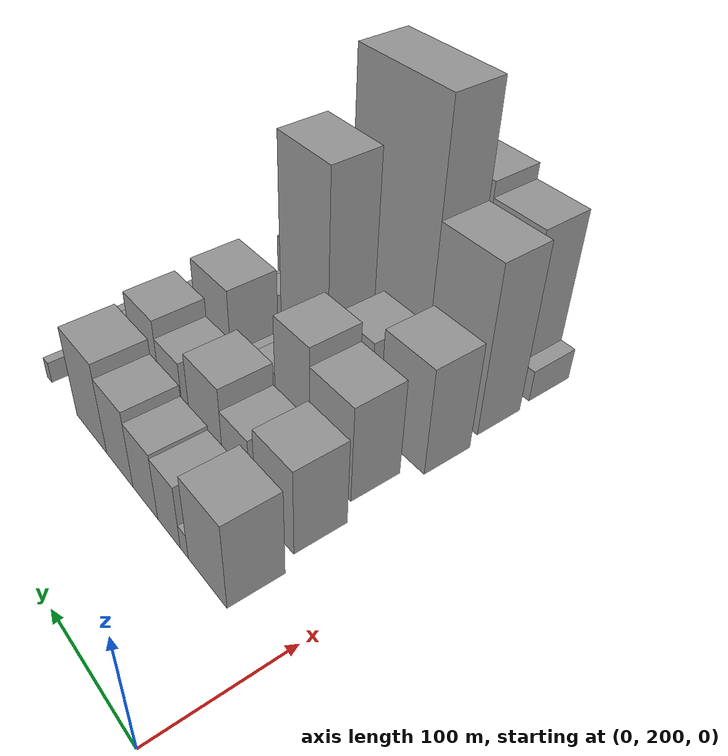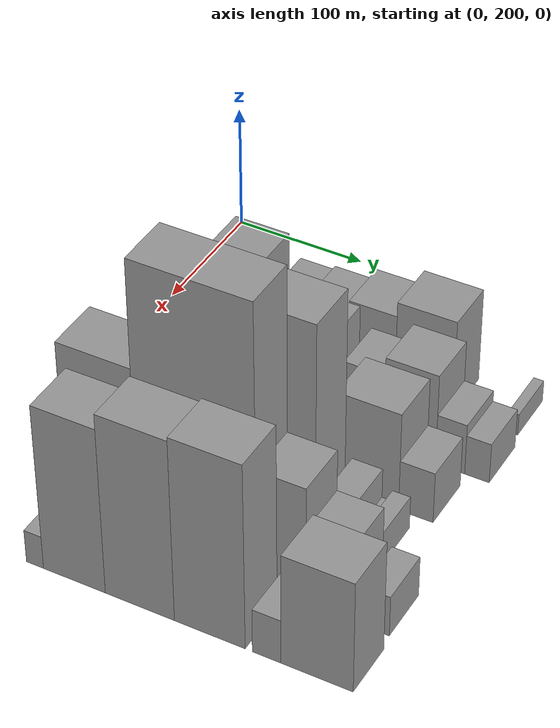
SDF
<sdf version="1.6">
 <world name="default">
  <model name="building_35">
   <static>1</static>
   <pose>100.0000 263.3432 0 0.000000 0.000000 0.000000</pose>
   <link name="link">
    <pose>0 0 36.00 0 0 0</pose>
    <collision name="collision"><geometry><box><size>40.0000 42.3230 72.0000</size></box></geometry></collision>
    <visual name="visual">
     <cast_shadows>0</cast_shadows>
     <geometry><box><size>40.0000 42.3230 72.0000</size></box></geometry>
     <material>
      <script>
       <uri>model://grey_wall/materials/scripts</uri>
       <uri>model://grey_wall/materials/textures</uri>
       <name>vrc/grey_wall</name>
      </script>
     </material>
    </visual>
   </link>
  </model>
  <model name="building_36">
   <static>1</static>
   <pose>100.0000 289.1036 0 0.000000 0.000000 0.000000</pose>
   <link name="link">
    <pose>0 0 10.50 0 0 0</pose>
    <collision name="collision"><geometry><box><size>40.0000 9.1977 21.0000</size></box></geometry></collision>
    <visual name="visual">
     <cast_shadows>0</cast_shadows>
     <geometry><box><size>40.0000 9.1977 21.0000</size></box></geometry>
     <material>
      <script>
       <uri>model://grey_wall/materials/scripts</uri>
       <uri>model://grey_wall/materials/textures</uri>
       <name>vrc/grey_wall</name>
      </script>
     </material>
    </visual>
   </link>
  </model>
  <model name="building_37">
   <static>1</static>
   <pose>100.0000 307.2518 0 0.000000 0.000000 0.000000</pose>
   <link name="link">
    <pose>0 0 27.00 0 0 0</pose>
    <collision name="collision"><geometry><box><size>40.0000 27.0988 54.0000</size></box></geometry></collision>
    <visual name="visual">
     <cast_shadows>0</cast_shadows>
     <geometry><box><size>40.0000 27.0988 54.0000</size></box></geometry>
     <material>
      <script>
       <uri>model://grey_wall/materials/scripts</uri>
       <uri>model://grey_wall/materials/textures</uri>
       <name>vrc/grey_wall</name>
      </script>
     </material>
    </visual>
   </link>
  </model>
  <model name="building_38">
   <static>1</static>
   <pose>100.0000 336.7507 0 0.000000 0.000000 0.000000</pose>
   <link name="link">
    <pose>0 0 28.50 0 0 0</pose>
    <collision name="collision"><geometry><box><size>40.0000 31.8990 57.0000</size></box></geometry></collision>
    <visual name="visual">
     <cast_shadows>0</cast_shadows>
     <geometry><box><size>40.0000 31.8990 57.0000</size></box></geometry>
     <material>
      <script>
       <uri>model://grey_wall/materials/scripts</uri>
       <uri>model://grey_wall/materials/textures</uri>
       <name>vrc/grey_wall</name>
      </script>
     </material>
    </visual>
   </link>
  </model>
  <model name="building_39">
   <static>1</static>
   <pose>100.0000 370.7542 0 0.000000 0.000000 0.000000</pose>
   <link name="link">
    <pose>0 0 33.00 0 0 0</pose>
    <collision name="collision"><geometry><box><size>40.0000 36.1079 66.0000</size></box></geometry></collision>
    <visual name="visual">
     <cast_shadows>0</cast_shadows>
     <geometry><box><size>40.0000 36.1079 66.0000</size></box></geometry>
     <material>
      <script>
       <uri>model://grey_wall/materials/scripts</uri>
       <uri>model://grey_wall/materials/textures</uri>
       <name>vrc/grey_wall</name>
      </script>
     </material>
    </visual>
   </link>
  </model>
  <model name="building_40">
   <static>1</static>
   <pose>100.0000 410.9158 0 0.000000 0.000000 0.000000</pose>
   <link name="link">
    <pose>0 0 39.00 0 0 0</pose>
    <collision name="collision"><geometry><box><size>40.0000 44.2153 78.0000</size></box></geometry></collision>
    <visual name="visual">
     <cast_shadows>0</cast_shadows>
     <geometry><box><size>40.0000 44.2153 78.0000</size></box></geometry>
     <material>
      <script>
       <uri>model://grey_wall/materials/scripts</uri>
       <uri>model://grey_wall/materials/textures</uri>
       <name>vrc/grey_wall</name>
      </script>
     </material>
    </visual>
   </link>
  </model>
  <model name="building_41">
   <static>1</static>
   <pose>100.0000 477.3206 0 0.000000 0.000000 0.000000</pose>
   <link name="link">
    <pose>0 0 9.00 0 0 0</pose>
    <collision name="collision"><geometry><box><size>40.0000 7.5315 18.0000</size></box></geometry></collision>
    <visual name="visual">
     <cast_shadows>0</cast_shadows>
     <geometry><box><size>40.0000 7.5315 18.0000</size></box></geometry>
     <material>
      <script>
       <uri>model://grey_wall/materials/scripts</uri>
       <uri>model://grey_wall/materials/textures</uri>
       <name>vrc/grey_wall</name>
      </script>
     </material>
    </visual>
   </link>
  </model>
  <model name="building_82">
   <static>1</static>
   <pose>152.0000 270.3311 0 0.000000 0.000000 0.000000</pose>
   <link name="link">
    <pose>0 0 36.00 0 0 0</pose>
    <collision name="collision"><geometry><box><size>40.0000 40.0743 72.0000</size></box></geometry></collision>
    <visual name="visual">
     <cast_shadows>0</cast_shadows>
     <geometry><box><size>40.0000 40.0743 72.0000</size></box></geometry>
     <material>
      <script>
       <uri>model://grey_wall/materials/scripts</uri>
       <uri>model://grey_wall/materials/textures</uri>
       <name>vrc/grey_wall</name>
      </script>
     </material>
    </visual>
   </link>
  </model>
  <model name="building_83">
   <static>1</static>
   <pose>152.0000 311.8385 0 0.000000 0.000000 0.000000</pose>
   <link name="link">
    <pose>0 0 28.50 0 0 0</pose>
    <collision name="collision"><geometry><box><size>40.0000 30.9406 57.0000</size></box></geometry></collision>
    <visual name="visual">
     <cast_shadows>0</cast_shadows>
     <geometry><box><size>40.0000 30.9406 57.0000</size></box></geometry>
     <material>
      <script>
       <uri>model://grey_wall/materials/scripts</uri>
       <uri>model://grey_wall/materials/textures</uri>
       <name>vrc/grey_wall</name>
      </script>
     </material>
    </visual>
   </link>
  </model>
  <model name="building_84">
   <static>1</static>
   <pose>152.0000 347.2280 0 0.000000 0.000000 0.000000</pose>
   <link name="link">
    <pose>0 0 37.50 0 0 0</pose>
    <collision name="collision"><geometry><box><size>40.0000 39.8383 75.0000</size></box></geometry></collision>
    <visual name="visual">
     <cast_shadows>0</cast_shadows>
     <geometry><box><size>40.0000 39.8383 75.0000</size></box></geometry>
     <material>
      <script>
       <uri>model://grey_wall/materials/scripts</uri>
       <uri>model://grey_wall/materials/textures</uri>
       <name>vrc/grey_wall</name>
      </script>
     </material>
    </visual>
   </link>
  </model>
  <model name="building_85">
   <static>1</static>
   <pose>152.0000 391.4638 0 0.000000 0.000000 0.000000</pose>
   <link name="link">
    <pose>0 0 30.00 0 0 0</pose>
    <collision name="collision"><geometry><box><size>40.0000 30.6335 60.0000</size></box></geometry></collision>
    <visual name="visual">
     <cast_shadows>0</cast_shadows>
     <geometry><box><size>40.0000 30.6335 60.0000</size></box></geometry>
     <material>
      <script>
       <uri>model://grey_wall/materials/scripts</uri>
       <uri>model://grey_wall/materials/textures</uri>
       <name>vrc/grey_wall</name>
      </script>
     </material>
    </visual>
   </link>
  </model>
  <model name="building_86">
   <static>1</static>
   <pose>152.0000 426.1451 0 0.000000 0.000000 0.000000</pose>
   <link name="link">
    <pose>0 0 37.50 0 0 0</pose>
    <collision name="collision"><geometry><box><size>40.0000 38.7290 75.0000</size></box></geometry></collision>
    <visual name="visual">
     <cast_shadows>0</cast_shadows>
     <geometry><box><size>40.0000 38.7290 75.0000</size></box></geometry>
     <material>
      <script>
       <uri>model://grey_wall/materials/scripts</uri>
       <uri>model://grey_wall/materials/textures</uri>
       <name>vrc/grey_wall</name>
      </script>
     </material>
    </visual>
   </link>
  </model>
  <model name="building_87">
   <static>1</static>
   <pose>152.0000 456.1907 0 0.000000 0.000000 0.000000</pose>
   <link name="link">
    <pose>0 0 21.00 0 0 0</pose>
    <collision name="collision"><geometry><box><size>40.0000 21.3623 42.0000</size></box></geometry></collision>
    <visual name="visual">
     <cast_shadows>0</cast_shadows>
     <geometry><box><size>40.0000 21.3623 42.0000</size></box></geometry>
     <material>
      <script>
       <uri>model://grey_wall/materials/scripts</uri>
       <uri>model://grey_wall/materials/textures</uri>
       <name>vrc/grey_wall</name>
      </script>
     </material>
    </visual>
   </link>
  </model>
  <model name="building_88">
   <static>1</static>
   <pose>152.0000 475.7826 0 0.000000 0.000000 0.000000</pose>
   <link name="link">
    <pose>0 0 16.50 0 0 0</pose>
    <collision name="collision"><geometry><box><size>40.0000 17.8215 33.0000</size></box></geometry></collision>
    <visual name="visual">
     <cast_shadows>0</cast_shadows>
     <geometry><box><size>40.0000 17.8215 33.0000</size></box></geometry>
     <material>
      <script>
       <uri>model://grey_wall/materials/scripts</uri>
       <uri>model://grey_wall/materials/textures</uri>
       <name>vrc/grey_wall</name>
      </script>
     </material>
    </visual>
   </link>
  </model>
  <model name="building_131">
   <static>1</static>
   <pose>204.0000 283.9819 0 0.000000 0.000000 0.000000</pose>
   <link name="link">
    <pose>0 0 40.50 0 0 0</pose>
    <collision name="collision"><geometry><box><size>40.0000 43.9001 81.0000</size></box></geometry></collision>
    <visual name="visual">
     <cast_shadows>0</cast_shadows>
     <geometry><box><size>40.0000 43.9001 81.0000</size></box></geometry>
     <material>
      <script>
       <uri>model://grey_wall/materials/scripts</uri>
       <uri>model://grey_wall/materials/textures</uri>
       <name>vrc/grey_wall</name>
      </script>
     </material>
    </visual>
   </link>
  </model>
  <model name="building_132">
   <static>1</static>
   <pose>204.0000 324.8077 0 0.000000 0.000000 0.000000</pose>
   <link name="link">
    <pose>0 0 48.00 0 0 0</pose>
    <collision name="collision"><geometry><box><size>40.0000 37.7515 96.0000</size></box></geometry></collision>
    <visual name="visual">
     <cast_shadows>0</cast_shadows>
     <geometry><box><size>40.0000 37.7515 96.0000</size></box></geometry>
     <material>
      <script>
       <uri>model://grey_wall/materials/scripts</uri>
       <uri>model://grey_wall/materials/textures</uri>
       <name>vrc/grey_wall</name>
      </script>
     </material>
    </visual>
   </link>
  </model>
  <model name="building_133">
   <static>1</static>
   <pose>204.0000 356.7998 0 0.000000 0.000000 0.000000</pose>
   <link name="link">
    <pose>0 0 24.00 0 0 0</pose>
    <collision name="collision"><geometry><box><size>40.0000 26.2327 48.0000</size></box></geometry></collision>
    <visual name="visual">
     <cast_shadows>0</cast_shadows>
     <geometry><box><size>40.0000 26.2327 48.0000</size></box></geometry>
     <material>
      <script>
       <uri>model://grey_wall/materials/scripts</uri>
       <uri>model://grey_wall/materials/textures</uri>
       <name>vrc/grey_wall</name>
      </script>
     </material>
    </visual>
   </link>
  </model>
  <model name="building_134">
   <static>1</static>
   <pose>204.0000 379.4706 0 0.000000 0.000000 0.000000</pose>
   <link name="link">
    <pose>0 0 18.00 0 0 0</pose>
    <collision name="collision"><geometry><box><size>40.0000 19.1090 36.0000</size></box></geometry></collision>
    <visual name="visual">
     <cast_shadows>0</cast_shadows>
     <geometry><box><size>40.0000 19.1090 36.0000</size></box></geometry>
     <material>
      <script>
       <uri>model://grey_wall/materials/scripts</uri>
       <uri>model://grey_wall/materials/textures</uri>
       <name>vrc/grey_wall</name>
      </script>
     </material>
    </visual>
   </link>
  </model>
  <model name="building_135">
   <static>1</static>
   <pose>204.0000 421.2798 0 0.000000 0.000000 0.000000</pose>
   <link name="link">
    <pose>0 0 40.50 0 0 0</pose>
    <collision name="collision"><geometry><box><size>40.0000 46.5094 81.0000</size></box></geometry></collision>
    <visual name="visual">
     <cast_shadows>0</cast_shadows>
     <geometry><box><size>40.0000 46.5094 81.0000</size></box></geometry>
     <material>
      <script>
       <uri>model://grey_wall/materials/scripts</uri>
       <uri>model://grey_wall/materials/textures</uri>
       <name>vrc/grey_wall</name>
      </script>
     </material>
    </visual>
   </link>
  </model>
  <model name="building_136">
   <static>1</static>
   <pose>204.0000 456.9595 0 0.000000 0.000000 0.000000</pose>
   <link name="link">
    <pose>0 0 21.00 0 0 0</pose>
    <collision name="collision"><geometry><box><size>40.0000 24.8499 42.0000</size></box></geometry></collision>
    <visual name="visual">
     <cast_shadows>0</cast_shadows>
     <geometry><box><size>40.0000 24.8499 42.0000</size></box></geometry>
     <material>
      <script>
       <uri>model://grey_wall/materials/scripts</uri>
       <uri>model://grey_wall/materials/textures</uri>
       <name>vrc/grey_wall</name>
      </script>
     </material>
    </visual>
   </link>
  </model>
  <model name="building_175">
   <static>1</static>
   <pose>256.0000 275.0761 0 0.000000 0.000000 0.000000</pose>
   <link name="link">
    <pose>0 0 45.00 0 0 0</pose>
    <collision name="collision"><geometry><box><size>40.0000 46.2716 90.0000</size></box></geometry></collision>
    <visual name="visual">
     <cast_shadows>0</cast_shadows>
     <geometry><box><size>40.0000 46.2716 90.0000</size></box></geometry>
     <material>
      <script>
       <uri>model://grey_wall/materials/scripts</uri>
       <uri>model://grey_wall/materials/textures</uri>
       <name>vrc/grey_wall</name>
      </script>
     </material>
    </visual>
   </link>
  </model>
  <model name="building_176">
   <static>1</static>
   <pose>256.0000 326.7029 0 0.000000 0.000000 0.000000</pose>
   <link name="link">
    <pose>0 0 36.00 0 0 0</pose>
    <collision name="collision"><geometry><box><size>40.0000 38.9820 72.0000</size></box></geometry></collision>
    <visual name="visual">
     <cast_shadows>0</cast_shadows>
     <geometry><box><size>40.0000 38.9820 72.0000</size></box></geometry>
     <material>
      <script>
       <uri>model://grey_wall/materials/scripts</uri>
       <uri>model://grey_wall/materials/textures</uri>
       <name>vrc/grey_wall</name>
      </script>
     </material>
    </visual>
   </link>
  </model>
  <model name="building_177">
   <static>1</static>
   <pose>256.0000 383.2286 0 0.000000 0.000000 0.000000</pose>
   <link name="link">
    <pose>0 0 88.50 0 0 0</pose>
    <collision name="collision"><geometry><box><size>40.0000 56.0694 177.0000</size></box></geometry></collision>
    <visual name="visual">
     <cast_shadows>0</cast_shadows>
     <geometry><box><size>40.0000 56.0694 177.0000</size></box></geometry>
     <material>
      <script>
       <uri>model://grey_wall/materials/scripts</uri>
       <uri>model://grey_wall/materials/textures</uri>
       <name>vrc/grey_wall</name>
      </script>
     </material>
    </visual>
   </link>
  </model>
  <model name="building_178">
   <static>1</static>
   <pose>256.0000 427.2331 0 0.000000 0.000000 0.000000</pose>
   <link name="link">
    <pose>0 0 21.00 0 0 0</pose>
    <collision name="collision"><geometry><box><size>40.0000 21.9396 42.0000</size></box></geometry></collision>
    <visual name="visual">
     <cast_shadows>0</cast_shadows>
     <geometry><box><size>40.0000 21.9396 42.0000</size></box></geometry>
     <material>
      <script>
       <uri>model://grey_wall/materials/scripts</uri>
       <uri>model://grey_wall/materials/textures</uri>
       <name>vrc/grey_wall</name>
      </script>
     </material>
    </visual>
   </link>
  </model>
  <model name="building_179">
   <static>1</static>
   <pose>256.0000 441.8886 0 0.000000 0.000000 0.000000</pose>
   <link name="link">
    <pose>0 0 9.00 0 0 0</pose>
    <collision name="collision"><geometry><box><size>40.0000 7.3712 18.0000</size></box></geometry></collision>
    <visual name="visual">
     <cast_shadows>0</cast_shadows>
     <geometry><box><size>40.0000 7.3712 18.0000</size></box></geometry>
     <material>
      <script>
       <uri>model://grey_wall/materials/scripts</uri>
       <uri>model://grey_wall/materials/textures</uri>
       <name>vrc/grey_wall</name>
      </script>
     </material>
    </visual>
   </link>
  </model>
  <model name="building_180">
   <static>1</static>
   <pose>256.0000 452.0042 0 0.000000 0.000000 0.000000</pose>
   <link name="link">
    <pose>0 0 13.50 0 0 0</pose>
    <collision name="collision"><geometry><box><size>40.0000 12.8602 27.0000</size></box></geometry></collision>
    <visual name="visual">
     <cast_shadows>0</cast_shadows>
     <geometry><box><size>40.0000 12.8602 27.0000</size></box></geometry>
     <material>
      <script>
       <uri>model://grey_wall/materials/scripts</uri>
       <uri>model://grey_wall/materials/textures</uri>
       <name>vrc/grey_wall</name>
      </script>
     </material>
    </visual>
   </link>
  </model>
  <model name="building_223">
   <static>1</static>
   <pose>308.0000 284.3520 0 0.000000 0.000000 0.000000</pose>
   <link name="link">
    <pose>0 0 70.50 0 0 0</pose>
    <collision name="collision"><geometry><box><size>40.0000 54.1273 141.0000</size></box></geometry></collision>
    <visual name="visual">
     <cast_shadows>0</cast_shadows>
     <geometry><box><size>40.0000 54.1273 141.0000</size></box></geometry>
     <material>
      <script>
       <uri>model://grey_wall/materials/scripts</uri>
       <uri>model://grey_wall/materials/textures</uri>
       <name>vrc/grey_wall</name>
      </script>
     </material>
    </visual>
   </link>
  </model>
  <model name="building_224">
   <static>1</static>
   <pose>308.0000 354.5592 0 0.000000 0.000000 0.000000</pose>
   <link name="link">
    <pose>0 0 112.50 0 0 0</pose>
    <collision name="collision"><geometry><box><size>40.0000 86.2870 225.0000</size></box></geometry></collision>
    <visual name="visual">
     <cast_shadows>0</cast_shadows>
     <geometry><box><size>40.0000 86.2870 225.0000</size></box></geometry>
     <material>
      <script>
       <uri>model://grey_wall/materials/scripts</uri>
       <uri>model://grey_wall/materials/textures</uri>
       <name>vrc/grey_wall</name>
      </script>
     </material>
    </visual>
   </link>
  </model>
  <model name="building_225">
   <static>1</static>
   <pose>308.0000 415.2173 0 0.000000 0.000000 0.000000</pose>
   <link name="link">
    <pose>0 0 48.00 0 0 0</pose>
    <collision name="collision"><geometry><box><size>40.0000 35.0294 96.0000</size></box></geometry></collision>
    <visual name="visual">
     <cast_shadows>0</cast_shadows>
     <geometry><box><size>40.0000 35.0294 96.0000</size></box></geometry>
     <material>
      <script>
       <uri>model://grey_wall/materials/scripts</uri>
       <uri>model://grey_wall/materials/textures</uri>
       <name>vrc/grey_wall</name>
      </script>
     </material>
    </visual>
   </link>
  </model>
  <model name="building_226">
   <static>1</static>
   <pose>308.0000 449.0790 0 0.000000 0.000000 0.000000</pose>
   <link name="link">
    <pose>0 0 31.50 0 0 0</pose>
    <collision name="collision"><geometry><box><size>40.0000 32.6939 63.0000</size></box></geometry></collision>
    <visual name="visual">
     <cast_shadows>0</cast_shadows>
     <geometry><box><size>40.0000 32.6939 63.0000</size></box></geometry>
     <material>
      <script>
       <uri>model://grey_wall/materials/scripts</uri>
       <uri>model://grey_wall/materials/textures</uri>
       <name>vrc/grey_wall</name>
      </script>
     </material>
    </visual>
   </link>
  </model>
  <model name="building_227">
   <static>1</static>
   <pose>308.0000 481.2177 0 0.000000 0.000000 0.000000</pose>
   <link name="link">
    <pose>0 0 16.50 0 0 0</pose>
    <collision name="collision"><geometry><box><size>40.0000 19.5836 33.0000</size></box></geometry></collision>
    <visual name="visual">
     <cast_shadows>0</cast_shadows>
     <geometry><box><size>40.0000 19.5836 33.0000</size></box></geometry>
     <material>
      <script>
       <uri>model://grey_wall/materials/scripts</uri>
       <uri>model://grey_wall/materials/textures</uri>
       <name>vrc/grey_wall</name>
      </script>
     </material>
    </visual>
   </link>
  </model>
  <model name="building_274">
   <static>1</static>
   <pose>360.0000 266.2638 0 0.000000 0.000000 0.000000</pose>
   <link name="link">
    <pose>0 0 13.50 0 0 0</pose>
    <collision name="collision"><geometry><box><size>40.0000 12.7730 27.0000</size></box></geometry></collision>
    <visual name="visual">
     <cast_shadows>0</cast_shadows>
     <geometry><box><size>40.0000 12.7730 27.0000</size></box></geometry>
     <material>
      <script>
       <uri>model://grey_wall/materials/scripts</uri>
       <uri>model://grey_wall/materials/textures</uri>
       <name>vrc/grey_wall</name>
      </script>
     </material>
    </visual>
   </link>
  </model>
  <model name="building_275">
   <static>1</static>
   <pose>360.0000 295.6273 0 0.000000 0.000000 0.000000</pose>
   <link name="link">
    <pose>0 0 67.50 0 0 0</pose>
    <collision name="collision"><geometry><box><size>40.0000 45.9540 135.0000</size></box></geometry></collision>
    <visual name="visual">
     <cast_shadows>0</cast_shadows>
     <geometry><box><size>40.0000 45.9540 135.0000</size></box></geometry>
     <material>
      <script>
       <uri>model://grey_wall/materials/scripts</uri>
       <uri>model://grey_wall/materials/textures</uri>
       <name>vrc/grey_wall</name>
      </script>
     </material>
    </visual>
   </link>
  </model>
  <model name="building_276">
   <static>1</static>
   <pose>360.0000 343.6880 0 0.000000 0.000000 0.000000</pose>
   <link name="link">
    <pose>0 0 73.50 0 0 0</pose>
    <collision name="collision"><geometry><box><size>40.0000 50.1674 147.0000</size></box></geometry></collision>
    <visual name="visual">
     <cast_shadows>0</cast_shadows>
     <geometry><box><size>40.0000 50.1674 147.0000</size></box></geometry>
     <material>
      <script>
       <uri>model://grey_wall/materials/scripts</uri>
       <uri>model://grey_wall/materials/textures</uri>
       <name>vrc/grey_wall</name>
      </script>
     </material>
    </visual>
   </link>
  </model>
  <model name="building_277">
   <static>1</static>
   <pose>360.0000 393.8714 0 0.000000 0.000000 0.000000</pose>
   <link name="link">
    <pose>0 0 75.00 0 0 0</pose>
    <collision name="collision"><geometry><box><size>40.0000 50.1994 150.0000</size></box></geometry></collision>
    <visual name="visual">
     <cast_shadows>0</cast_shadows>
     <geometry><box><size>40.0000 50.1994 150.0000</size></box></geometry>
     <material>
      <script>
       <uri>model://grey_wall/materials/scripts</uri>
       <uri>model://grey_wall/materials/textures</uri>
       <name>vrc/grey_wall</name>
      </script>
     </material>
    </visual>
   </link>
  </model>
  <model name="building_278">
   <static>1</static>
   <pose>360.0000 433.9265 0 0.000000 0.000000 0.000000</pose>
   <link name="link">
    <pose>0 0 18.00 0 0 0</pose>
    <collision name="collision"><geometry><box><size>40.0000 19.9107 36.0000</size></box></geometry></collision>
    <visual name="visual">
     <cast_shadows>0</cast_shadows>
     <geometry><box><size>40.0000 19.9107 36.0000</size></box></geometry>
     <material>
      <script>
       <uri>model://grey_wall/materials/scripts</uri>
       <uri>model://grey_wall/materials/textures</uri>
       <name>vrc/grey_wall</name>
      </script>
     </material>
    </visual>
   </link>
  </model>
  <model name="building_279">
   <static>1</static>
   <pose>360.0000 468.5972 0 0.000000 0.000000 0.000000</pose>
   <link name="link">
    <pose>0 0 45.00 0 0 0</pose>
    <collision name="collision"><geometry><box><size>40.0000 49.4307 90.0000</size></box></geometry></collision>
    <visual name="visual">
     <cast_shadows>0</cast_shadows>
     <geometry><box><size>40.0000 49.4307 90.0000</size></box></geometry>
     <material>
      <script>
       <uri>model://grey_wall/materials/scripts</uri>
       <uri>model://grey_wall/materials/textures</uri>
       <name>vrc/grey_wall</name>
      </script>
     </material>
    </visual>
   </link>
  </model>
 </world>
</sdf>
